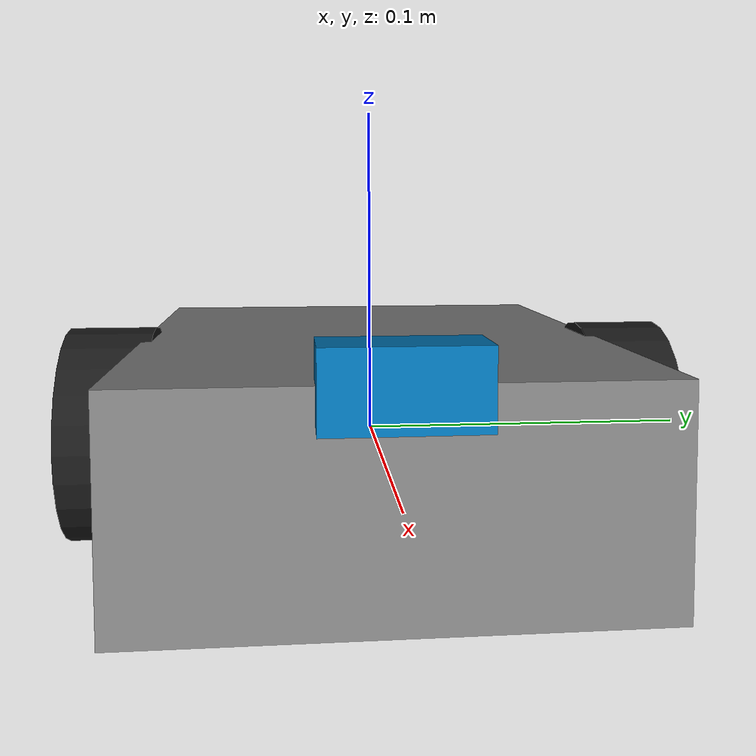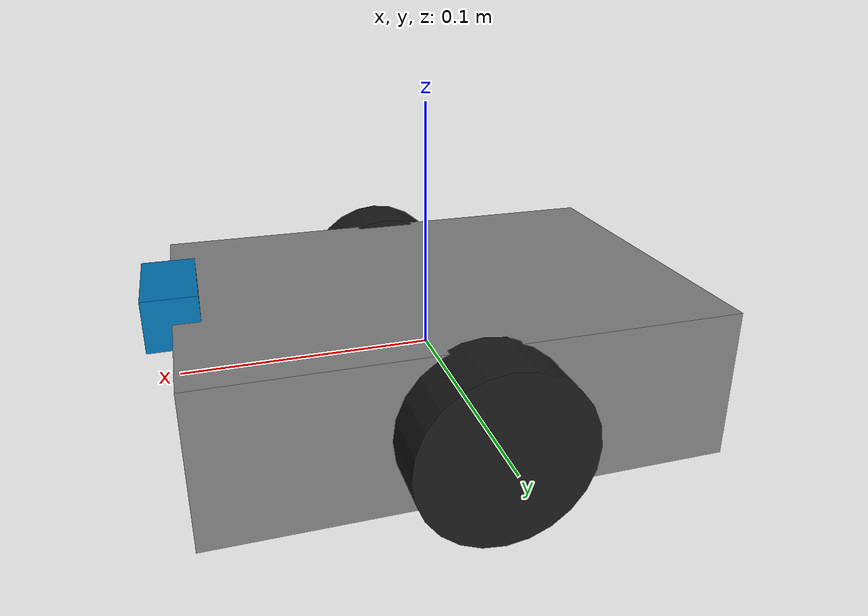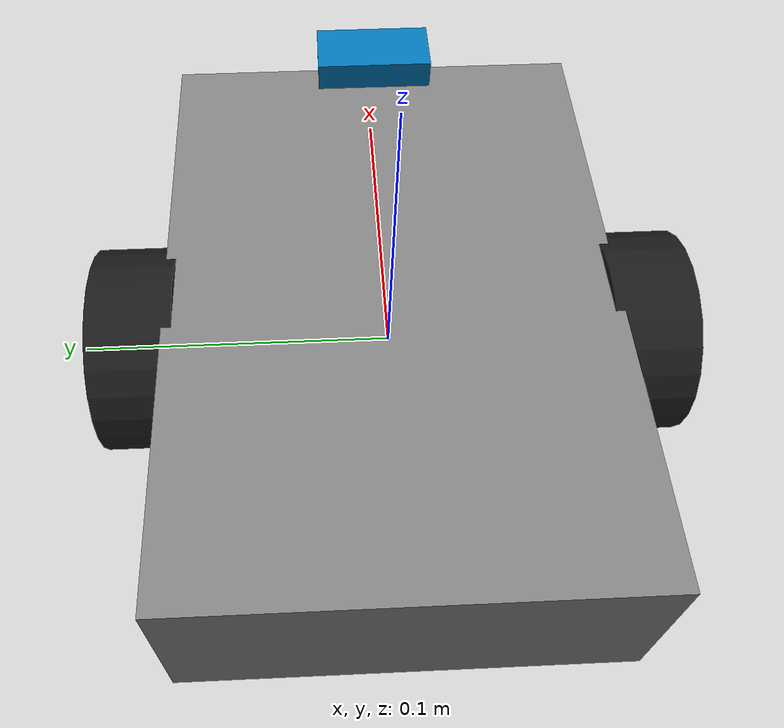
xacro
<?xml version="1.0"?>
<robot name="vision_bot" xmlns:xacro="http://www.ros.org/wiki/xacro">

  <xacro:property name="chassis_length" value="0.20"/>
  <xacro:property name="chassis_width" value="0.14"/>
  <xacro:property name="chassis_height" value="0.06"/>
  <xacro:property name="wheel_radius" value="0.033"/>
  <xacro:property name="wheel_width" value="0.026"/>
  <xacro:property name="wheel_separation" value="0.16"/>

  <link name="base_link">
    <visual>
      <geometry><box size="${chassis_length} ${chassis_width} ${chassis_height}"/></geometry>
      <material name="grey"><color rgba="0.5 0.5 0.5 1"/></material>
    </visual>
    <collision>
      <geometry><box size="${chassis_length} ${chassis_width} ${chassis_height}"/></geometry>
    </collision>
    <inertial>
      <mass value="1.2"/>
      <inertia ixx="0.01" ixy="0" ixz="0" iyy="0.01" iyz="0" izz="0.01"/>
    </inertial>
  </link>

  <xacro:macro name="wheel" params="prefix y_offset">
    <link name="${prefix}_wheel">
      <visual>
        <origin rpy="1.5708 0 0"/>
        <geometry><cylinder radius="${wheel_radius}" length="${wheel_width}"/></geometry>
        <material name="black"><color rgba="0.1 0.1 0.1 1"/></material>
      </visual>
      <collision>
        <origin rpy="1.5708 0 0"/>
        <geometry><cylinder radius="${wheel_radius}" length="${wheel_width}"/></geometry>
      </collision>
      <inertial>
        <mass value="0.1"/>
        <inertia ixx="0.0005" ixy="0" ixz="0" iyy="0.0005" iyz="0" izz="0.0005"/>
      </inertial>
    </link>
    <joint name="${prefix}_wheel_joint" type="continuous">
      <parent link="base_link"/>
      <child link="${prefix}_wheel"/>
      <origin xyz="0 ${y_offset} 0" rpy="0 0 0"/>
      <axis xyz="0 1 0"/>
    </joint>
  </xacro:macro>

  <xacro:wheel prefix="left" y_offset="${wheel_separation/2}"/>
  <xacro:wheel prefix="right" y_offset="${-wheel_separation/2}"/>

  <link name="caster_wheel">
    <visual><geometry><sphere radius="0.015"/></geometry></visual>
    <collision><geometry><sphere radius="0.015"/></geometry></collision>
    <inertial>
      <mass value="0.05"/>
      <inertia ixx="0.0001" ixy="0" ixz="0" iyy="0.0001" iyz="0" izz="0.0001"/>
    </inertial>
  </link>
  <joint name="caster_joint" type="fixed">
    <parent link="base_link"/>
    <child link="caster_wheel"/>
    <origin xyz="-0.08 0 -0.02" rpy="0 0 0"/>
  </joint>

  <link name="camera_link">
    <visual><geometry><box size="0.02 0.04 0.02"/></geometry></visual>
  </link>
  <joint name="camera_joint" type="fixed">
    <parent link="base_link"/>
    <child link="camera_link"/>
    <origin xyz="0.10 0 0.03" rpy="0 0 0"/>
  </joint>

  <!-- Gazebo plugins: differential drive + camera sensor -->
  <gazebo>
    <plugin name="diff_drive" filename="libgazebo_ros_diff_drive.so">
      <left_joint>left_wheel_joint</left_joint>
      <right_joint>right_wheel_joint</right_joint>
      <wheel_separation>${wheel_separation}</wheel_separation>
      <wheel_diameter>${wheel_radius*2}</wheel_diameter>
      <command_topic>cmd_vel</command_topic>
      <odometry_topic>odom</odometry_topic>
      <robot_base_frame>base_link</robot_base_frame>
    </plugin>
  </gazebo>

  <gazebo reference="camera_link">
    <sensor type="camera" name="camera">
      <update_rate>30.0</update_rate>
      <camera>
        <horizontal_fov>1.3</horizontal_fov>
        <image><width>640</width><height>480</height><format>R8G8B8</format></image>
        <clip><near>0.02</near><far>10</far></clip>
      </camera>
      <plugin name="camera_controller" filename="libgazebo_ros_camera.so">
        <ros>
          <remapping>image_raw:=/camera/image_raw</remapping>
        </ros>
        <frame_name>camera_link</frame_name>
      </plugin>
    </sensor>
  </gazebo>

</robot>
